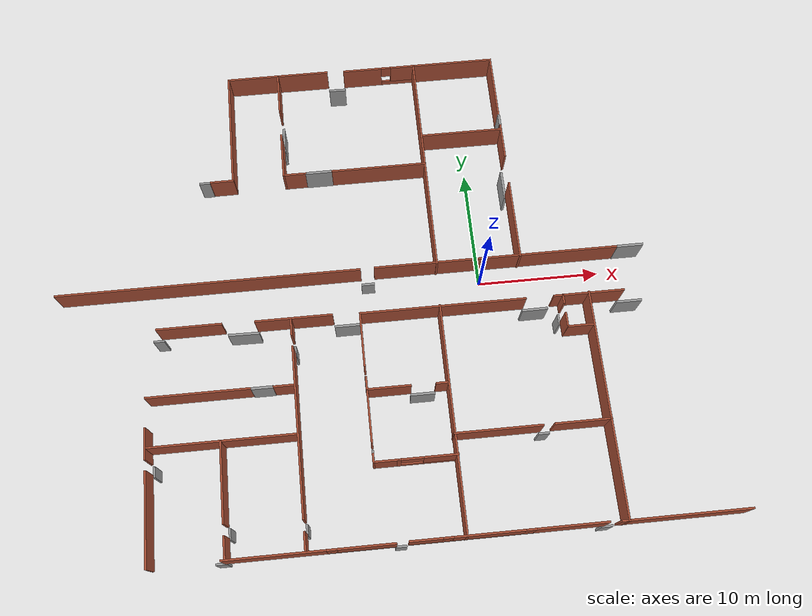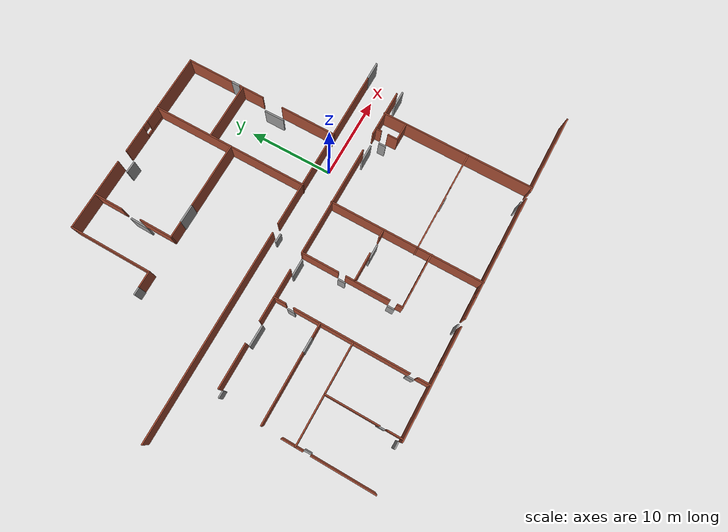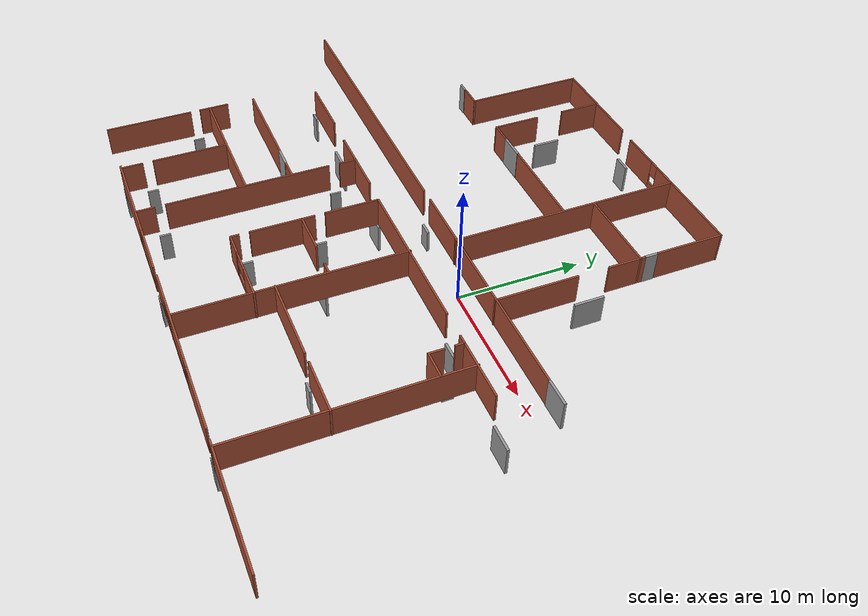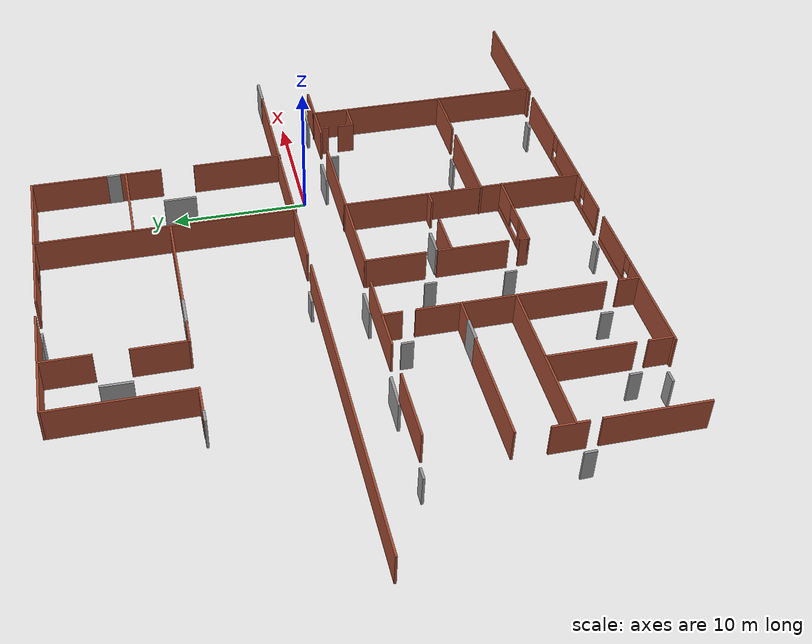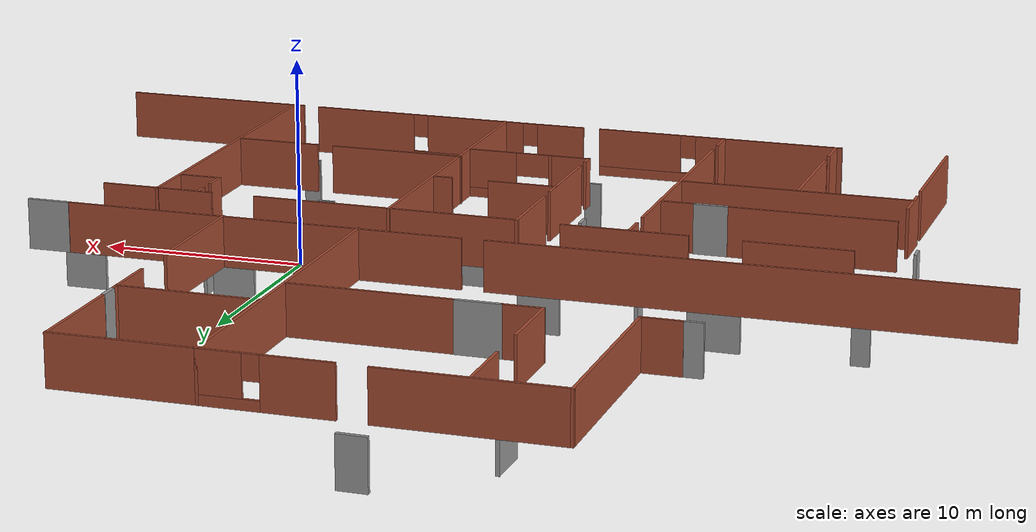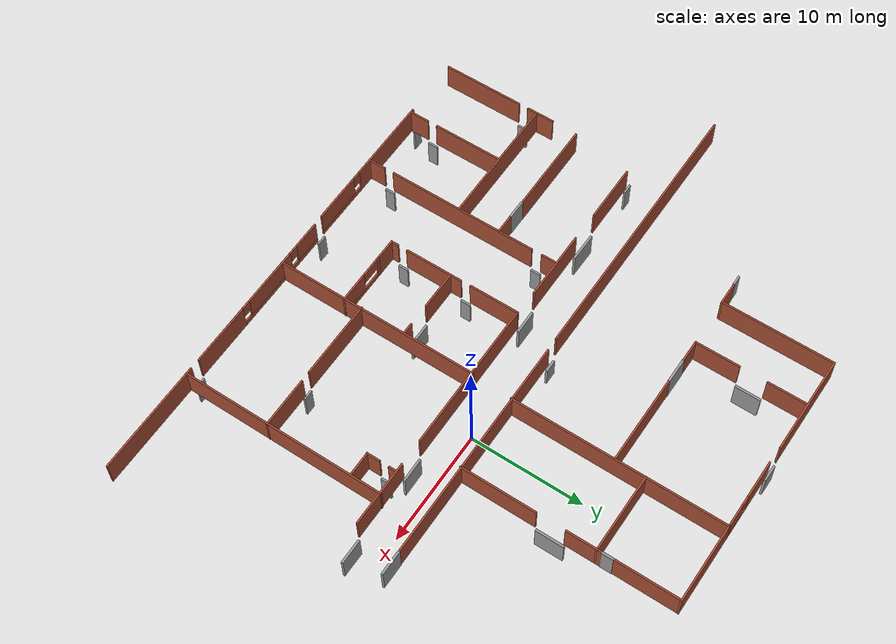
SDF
<sdf version="1.6">
 <model name="Bainer_Hall_FP">
  <pose>1.25513 -0.156837 0 0 -0 0</pose>
  <link name="Door_11">
   <collision name="Door_11_Collision">
    <geometry><box><size>0.9 0.17 2.5</size></box></geometry>
    <pose>0 0 1.25 0 -0 0</pose>
   </collision>
   <visual name="Door_11_Visual">
    <pose>0 0 1.25 0 -0 0</pose>
    <geometry><box><size>0.9 0.17 2.5</size></box></geometry>
    <material>
     <script><uri>file://media/materials/scripts/gazebo.material</uri><name>Gazebo/Grey</name></script>
    </material>
   </visual>
   <pose>-23.3342 10.4772 0 0 -0 0</pose>
  </link>
  <link name="Door_14">
   <collision name="Door_14_Collision">
    <geometry><box><size>1.11106 0.2 2</size></box></geometry>
    <pose>0 0 1 0 -0 0</pose>
   </collision>
   <visual name="Door_14_Visual">
    <pose>0 0 1 0 -0 0</pose>
    <geometry><box><size>1.11106 0.2 2</size></box></geometry>
    <material>
     <script><uri>file://media/materials/scripts/gazebo.material</uri><name>Gazebo/Grey</name></script>
    </material>
   </visual>
   <pose>-10.4248 1.46984 -3 0 -0 0</pose>
  </link>
  <link name="Door_15">
   <collision name="Door_15_Collision">
    <geometry><box><size>2.143 0.2 2.5</size></box></geometry>
    <pose>0 0 1.25 0 -0 0</pose>
   </collision>
   <visual name="Door_15_Visual">
    <pose>0 0 1.25 0 -0 0</pose>
    <geometry><box><size>2.143 0.2 2.5</size></box></geometry>
    <material>
     <script><uri>file://media/materials/scripts/gazebo.material</uri><name>Gazebo/Grey</name></script>
    </material>
   </visual>
   <pose>11.2185 1.52839 0 0 -0 0</pose>
  </link>
  <link name="Door_16">
   <collision name="Door_16_Collision">
    <geometry><box><size>1.464 0.2 2.5</size></box></geometry>
    <pose>0 0 1.25 0 -0 0</pose>
   </collision>
   <visual name="Door_16_Visual">
    <pose>0 0 1.25 0 -0 0</pose>
    <geometry><box><size>1.464 0.2 2.5</size></box></geometry>
    <material>
     <script><uri>file://media/materials/scripts/gazebo.material</uri><name>Gazebo/Grey</name></script>
    </material>
   </visual>
   <pose>-11.5568 20.3759 -3 0 -0 3.12319</pose>
  </link>
  <link name="Door_17">
   <collision name="Door_17_Collision">
    <geometry><box><size>2.225 0.2 2.5</size></box></geometry>
    <pose>0 0 1.25 0 -0 0</pose>
   </collision>
   <visual name="Door_17_Visual">
    <pose>0 0 1.25 0 -0 0</pose>
    <geometry><box><size>2.225 0.2 2.5</size></box></geometry>
    <material>
     <script><uri>file://media/materials/scripts/gazebo.material</uri><name>Gazebo/Grey</name></script>
    </material>
   </visual>
   <pose>-13.7307 10.6137 0 0 -0 0</pose>
  </link>
  <link name="Door_19">
   <collision name="Door_19_Collision">
    <geometry><box><size>2.29098 0.2 2.5</size></box></geometry>
    <pose>0 0 1.25 0 -0 0</pose>
   </collision>
   <visual name="Door_19_Visual">
    <pose>0 0 1.25 0 -0 0</pose>
    <geometry><box><size>2.29098 0.2 2.5</size></box></geometry>
    <material>
     <script><uri>file://media/materials/scripts/gazebo.material</uri><name>Gazebo/Grey</name></script>
    </material>
   </visual>
   <pose>-16.6651 15.6807 -3 0 0 -1.58178</pose>
  </link>
  <link name="Door_20">
   <collision name="Door_20_Collision">
    <geometry><box><size>2.518 0.2 2.5</size></box></geometry>
    <pose>0 0 1.25 0 -0 0</pose>
   </collision>
   <visual name="Door_20_Visual">
    <pose>0 0 1.25 0 -0 0</pose>
    <geometry><box><size>2.518 0.2 2.5</size></box></geometry>
    <material>
     <script><uri>file://media/materials/scripts/gazebo.material</uri><name>Gazebo/Grey</name></script>
    </material>
   </visual>
   <pose>2.14668 9.40743 -3 0 -0 1.57339</pose>
  </link>
  <link name="Door_21">
   <collision name="Door_21_Collision">
    <geometry><box><size>1.007 0.2 2.5</size></box></geometry>
    <pose>0 0 1.25 0 -0 0</pose>
   </collision>
   <visual name="Door_21_Visual">
    <pose>0 0 1.25 0 -0 0</pose>
    <geometry><box><size>1.007 0.2 2.5</size></box></geometry>
    <material>
     <script><uri>file://media/materials/scripts/gazebo.material</uri><name>Gazebo/Grey</name></script>
    </material>
   </visual>
   <pose>2.14334 14.2049 0 0 0 -1.5708</pose>
  </link>
  <link name="Door_32">
   <collision name="Door_32_Collision">
    <geometry><box><size>0.9 0.17 2.5</size></box></geometry>
    <pose>0 0 1.25 0 -0 0</pose>
   </collision>
   <visual name="Door_32_Visual">
    <pose>0 0 1.25 0 -0 0</pose>
    <geometry><box><size>0.9 0.17 2.5</size></box></geometry>
    <material>
     <script><uri>file://media/materials/scripts/gazebo.material</uri><name>Gazebo/Grey</name></script>
    </material>
   </visual>
   <pose>-28.0011 -2.09981 -3 0 -0 0</pose>
  </link>
  <link name="Door_33">
   <collision name="Door_33_Collision">
    <geometry><box><size>2.592 0.2 2.5</size></box></geometry>
    <pose>0 0 1.25 0 -0 0</pose>
   </collision>
   <visual name="Door_33_Visual">
    <pose>0 0 1.25 0 -0 0</pose>
    <geometry><box><size>2.592 0.2 2.5</size></box></geometry>
    <material>
     <script><uri>file://media/materials/scripts/gazebo.material</uri><name>Gazebo/Grey</name></script>
    </material>
   </visual>
   <pose>-21.0189 -2.12561 -3 0 -0 3.12756</pose>
  </link>
  <link name="Door_34">
   <collision name="Door_34_Collision">
    <geometry><box><size>2.11 0.2 2.5</size></box></geometry>
    <pose>0 0 1.25 0 -0 0</pose>
   </collision>
   <visual name="Door_34_Visual">
    <pose>0 0 1.25 0 -0 0</pose>
    <geometry><box><size>2.11 0.2 2.5</size></box></geometry>
    <material>
     <script><uri>file://media/materials/scripts/gazebo.material</uri><name>Gazebo/Grey</name></script>
    </material>
   </visual>
   <pose>-12.4392 -2.19282 -3 0 0 -3.14115</pose>
  </link>
  <link name="Door_35">
   <collision name="Door_35_Collision">
    <geometry><box><size>2.157 0.2 2.5</size></box></geometry>
    <pose>0 0 1.25 0 -0 0</pose>
   </collision>
   <visual name="Door_35_Visual">
    <pose>0 0 1.25 0 -0 0</pose>
    <geometry><box><size>2.157 0.2 2.5</size></box></geometry>
    <material>
     <script><uri>file://media/materials/scripts/gazebo.material</uri><name>Gazebo/Grey</name></script>
    </material>
   </visual>
   <pose>3.22764 -2.26006 -3 0 0 -3.13357</pose>
  </link>
  <link name="Door_36">
   <collision name="Door_36_Collision">
    <geometry><box><size>2.157 0.2 2.5</size></box></geometry>
    <pose>0 0 1.25 0 -0 0</pose>
   </collision>
   <visual name="Door_36_Visual">
    <pose>0 0 1.25 0 -0 0</pose>
    <geometry><box><size>2.157 0.2 2.5</size></box></geometry>
    <material>
     <script><uri>file://media/materials/scripts/gazebo.material</uri><name>Gazebo/Grey</name></script>
    </material>
   </visual>
   <pose>11.1742 -2.26006 -3 0 -0 0</pose>
  </link>
  <link name="Door_47">
   <collision name="Door_47_Collision">
    <geometry><box><size>0.9 0.17 2.5</size></box></geometry>
    <pose>0 0 1.25 0 -0 0</pose>
   </collision>
   <visual name="Door_47_Visual">
    <pose>0 0 1.25 0 -0 0</pose>
    <geometry><box><size>0.9 0.17 2.5</size></box></geometry>
    <material>
     <script><uri>file://media/materials/scripts/gazebo.material</uri><name>Gazebo/Grey</name></script>
    </material>
   </visual>
   <pose>6.17549 -20.287 -3 0 -0 0</pose>
  </link>
  <link name="Door_48">
   <collision name="Door_48_Collision">
    <geometry><box><size>0.9 0.17 2.5</size></box></geometry>
    <pose>0 0 1.25 0 -0 0</pose>
   </collision>
   <visual name="Door_48_Visual">
    <pose>0 0 1.25 0 -0 0</pose>
    <geometry><box><size>0.9 0.17 2.5</size></box></geometry>
    <material>
     <script><uri>file://media/materials/scripts/gazebo.material</uri><name>Gazebo/Grey</name></script>
    </material>
   </visual>
   <pose>-9.75215 -20.292 -3 0 -0 0</pose>
  </link>
  <link name="Door_60">
   <collision name="Door_60_Collision">
    <geometry><box><size>0.9 0.17 2.5</size></box></geometry>
    <pose>0 0 1.25 0 -0 0</pose>
   </collision>
   <visual name="Door_60_Visual">
    <pose>0 0 1.25 0 -0 0</pose>
    <geometry><box><size>0.9 0.17 2.5</size></box></geometry>
    <material>
     <script><uri>file://media/materials/scripts/gazebo.material</uri><name>Gazebo/Grey</name></script>
    </material>
   </visual>
   <pose>-28.5031 -12.8222 -3 0 -0 1.59264</pose>
  </link>
  <link name="Door_61">
   <collision name="Door_61_Collision">
    <geometry><box><size>0.9 0.17 2.5</size></box></geometry>
    <pose>0 0 1.25 0 -0 0</pose>
   </collision>
   <visual name="Door_61_Visual">
    <pose>0 0 1.25 0 -0 0</pose>
    <geometry><box><size>0.9 0.17 2.5</size></box></geometry>
    <material>
     <script><uri>file://media/materials/scripts/gazebo.material</uri><name>Gazebo/Grey</name></script>
    </material>
   </visual>
   <pose>-16.8508 -4.01792 -3 0 -0 1.57286</pose>
  </link>
  <link name="Door_62">
   <collision name="Door_62_Collision">
    <geometry><box><size>0.9 0.17 2.5</size></box></geometry>
    <pose>0 0 1.25 0 -0 0</pose>
   </collision>
   <visual name="Door_62_Visual">
    <pose>0 0 1.25 0 -0 0</pose>
    <geometry><box><size>0.9 0.17 2.5</size></box></geometry>
    <material>
     <script><uri>file://media/materials/scripts/gazebo.material</uri><name>Gazebo/Grey</name></script>
    </material>
   </visual>
   <pose>-16.8428 -18.4047 -3 0 -0 1.55866</pose>
  </link>
  <link name="Door_63">
   <collision name="Door_63_Collision">
    <geometry><box><size>1.71 0.2 2.5</size></box></geometry>
    <pose>0 0 1.25 0 -0 0</pose>
   </collision>
   <visual name="Door_63_Visual">
    <pose>0 0 1.25 0 -0 0</pose>
    <geometry><box><size>1.71 0.2 2.5</size></box></geometry>
    <material>
     <script><uri>file://media/materials/scripts/gazebo.material</uri><name>Gazebo/Grey</name></script>
    </material>
   </visual>
   <pose>-19.4005 -7.62221 0 0 -0 3.14079</pose>
  </link>
  <link name="Door_64">
   <collision name="Door_64_Collision">
    <geometry><box><size>0.9 0.17 2.5</size></box></geometry>
    <pose>0 0 1.25 0 -0 0</pose>
   </collision>
   <visual name="Door_64_Visual">
    <pose>0 0 1.25 0 -0 0</pose>
    <geometry><box><size>0.9 0.17 2.5</size></box></geometry>
    <material>
     <script><uri>file://media/materials/scripts/gazebo.material</uri><name>Gazebo/Grey</name></script>
    </material>
   </visual>
   <pose>-22.7643 -18.1446 -3 0 0 -1.56371</pose>
  </link>
  <link name="Door_66">
   <collision name="Door_66_Collision">
    <geometry><box><size>0.9 0.17 2.5</size></box></geometry>
    <pose>0 0 1.25 0 -0 0</pose>
   </collision>
   <visual name="Door_66_Visual">
    <pose>0 0 1.25 0 -0 0</pose>
    <geometry><box><size>0.9 0.17 2.5</size></box></geometry>
    <material>
     <script><uri>file://media/materials/scripts/gazebo.material</uri><name>Gazebo/Grey</name></script>
    </material>
   </visual>
   <pose>-23.4877 -20.2913 -3 0 -0 0</pose>
  </link>
  <link name="Door_67">
   <collision name="Door_67_Collision">
    <geometry><box><size>0.9 0.17 2.5</size></box></geometry>
    <pose>0 0 1.25 0 -0 0</pose>
   </collision>
   <visual name="Door_67_Visual">
    <pose>0 0 1.25 0 -0 0</pose>
    <geometry><box><size>0.9 0.17 2.5</size></box></geometry>
    <material>
     <script><uri>file://media/materials/scripts/gazebo.material</uri><name>Gazebo/Grey</name></script>
    </material>
   </visual>
   <pose>-11.3225 -7.13282 -3 0 0 -1.57029</pose>
  </link>
  <link name="Door_68">
   <collision name="Door_68_Collision">
    <geometry><box><size>0.9 0.17 2.5</size></box></geometry>
    <pose>0 0 1.25 0 -0 0</pose>
   </collision>
   <visual name="Door_68_Visual">
    <pose>0 0 1.25 0 -0 0</pose>
    <geometry><box><size>0.9 0.17 2.5</size></box></geometry>
    <material>
     <script><uri>file://media/materials/scripts/gazebo.material</uri><name>Gazebo/Grey</name></script>
    </material>
   </visual>
   <pose>-11.287 -13.1738 -3 0 0 -1.56906</pose>
  </link>
  <link name="Door_70">
   <collision name="Door_70_Collision">
    <geometry><box><size>2 0.2 2.5</size></box></geometry>
    <pose>0 0 1.25 0 -0 0</pose>
   </collision>
   <visual name="Door_70_Visual">
    <pose>0 0 1.25 0 -0 0</pose>
    <geometry><box><size>2 0.2 2.5</size></box></geometry>
    <material>
     <script><uri>file://media/materials/scripts/gazebo.material</uri><name>Gazebo/Grey</name></script>
    </material>
   </visual>
   <pose>-6.84024 -8.55412 -3 0 -0 0</pose>
  </link>
  <link name="Door_72">
   <collision name="Door_72_Collision">
    <geometry><box><size>0.9 0.17 2.5</size></box></geometry>
    <pose>0 0 1.25 0 -0 0</pose>
   </collision>
   <visual name="Door_72_Visual">
    <pose>0 0 1.25 0 -0 0</pose>
    <geometry><box><size>0.9 0.17 2.5</size></box></geometry>
    <material>
     <script><uri>file://media/materials/scripts/gazebo.material</uri><name>Gazebo/Grey</name></script>
    </material>
   </visual>
   <pose>2.42458 -12.6709 -3 0 -0 0</pose>
  </link>
  <link name="Door_73">
   <collision name="Door_73_Collision">
    <geometry><box><size>0.9 0.17 2.5</size></box></geometry>
    <pose>0 0 1.25 0 -0 0</pose>
   </collision>
   <visual name="Door_73_Visual">
    <pose>0 0 1.25 0 -0 0</pose>
    <geometry><box><size>0.9 0.17 2.5</size></box></geometry>
    <material>
     <script><uri>file://media/materials/scripts/gazebo.material</uri><name>Gazebo/Grey</name></script>
    </material>
   </visual>
   <pose>5.06769 -3.35498 -3 0 0 -1.56706</pose>
  </link>
  <link name="Wall_167">
   <collision name="Wall_167_Collision">
    <geometry><box><size>10 0.15 2.5</size></box></geometry>
    <pose>0 0 1.25 0 -0 0</pose>
   </collision>
   <visual name="Wall_167_Visual">
    <pose>0 0 1.25 0 -0 0</pose>
    <geometry><box><size>10 0.15 2.5</size></box></geometry>
    <material>
     <script><uri>file://media/materials/scripts/gazebo.material</uri><name>Gazebo/Bricks</name></script>
     <ambient>1 1 1 1</ambient>
    </material>
   </visual>
   <pose>-20.969 15.4363 0 0 0 -1.5708</pose>
  </link>
  <link name="Wall_169">
   <collision name="Wall_169_Collision">
    <geometry><box><size>2 0.15 2.5</size></box></geometry>
    <pose>0 0 1.25 0 -0 0</pose>
   </collision>
   <visual name="Wall_169_Visual">
    <pose>0 0 1.25 0 -0 0</pose>
    <geometry><box><size>2 0.15 2.5</size></box></geometry>
    <material>
     <script><uri>file://media/materials/scripts/gazebo.material</uri><name>Gazebo/Bricks</name></script>
     <ambient>1 1 1 1</ambient>
    </material>
   </visual>
   <pose>-21.894 10.5113 0 0 -0 3.14159</pose>
  </link>
  <link name="Wall_171">
   <collision name="Wall_171_Collision">
    <geometry><box><size>24.75 0.15 2.5</size></box></geometry>
    <pose>0 0 1.25 0 -0 0</pose>
   </collision>
   <visual name="Wall_171_Visual">
    <pose>0 0 1.25 0 -0 0</pose>
    <geometry><box><size>24.75 0.15 2.5</size></box></geometry>
    <material>
     <script><uri>file://media/materials/scripts/gazebo.material</uri><name>Gazebo/Bricks</name></script>
     <ambient>1 1 1 1</ambient>
    </material>
   </visual>
   <pose>-23.3231 1.50384 0 0 -0 0</pose>
  </link>
  <link name="Wall_173">
   <collision name="Wall_173_Collision">
    <geometry><box><size>20 0.15 2.5</size></box></geometry>
    <pose>0 0 1.25 0 -0 0</pose>
   </collision>
   <visual name="Wall_173_Visual">
    <pose>0 0 1.25 0 -0 0</pose>
    <geometry><box><size>20 0.15 2.5</size></box></geometry>
    <material>
     <script><uri>file://media/materials/scripts/gazebo.material</uri><name>Gazebo/Bricks</name></script>
     <ambient>1 1 1 1</ambient>
    </material>
   </visual>
   <pose>0.142914 1.53154 0 0 -0 0</pose>
  </link>
  <link name="Wall_177">
   <collision name="Wall_177_Collision">
    <geometry><box><size>8.75 0.15 2.5</size></box></geometry>
    <pose>0 0 1.25 0 -0 0</pose>
   </collision>
   <visual name="Wall_177_Visual">
    <pose>0 0 1.25 0 -0 0</pose>
    <geometry><box><size>8.75 0.15 2.5</size></box></geometry>
    <material>
     <script><uri>file://media/materials/scripts/gazebo.material</uri><name>Gazebo/Bricks</name></script>
     <ambient>1 1 1 1</ambient>
    </material>
   </visual>
   <pose>-16.669 20.3613 0 0 -0 0</pose>
  </link>
  <link name="Wall_179">
   <pose>-7.75834 20.3043 0 0 -0 0</pose>
   <visual name="Wall_179_Visual_0">
    <pose>-1.45002 0 1.25 0 -0 0</pose>
    <geometry><box><size>3.34997 0.15 2.5</size></box></geometry>
    <material>
     <script><uri>file://media/materials/scripts/gazebo.material</uri><name>Gazebo/Bricks</name></script>
     <ambient>1 1 1 1</ambient>
    </material>
   </visual>
   <collision name="Wall_179_Collision_0">
    <geometry><box><size>3.34997 0.15 2.5</size></box></geometry>
    <pose>-1.45002 0 1.25 0 -0 0</pose>
   </collision>
   <visual name="Wall_179_Visual_1">
    <pose>1.67498 0 0.25 0 -0 0</pose>
    <geometry><box><size>2.90003 0.15 0.5</size></box></geometry>
    <material>
     <script><uri>file://media/materials/scripts/gazebo.material</uri><name>Gazebo/Bricks</name></script>
     <ambient>1 1 1 1</ambient>
    </material>
   </visual>
   <collision name="Wall_179_Collision_1">
    <geometry><box><size>2.90003 0.15 0.5</size></box></geometry>
    <pose>1.67498 0 0.25 0 -0 0</pose>
   </collision>
   <visual name="Wall_179_Visual_2">
    <pose>2.07498 0 1.5 0 -0 0</pose>
    <geometry><box><size>2.10003 0.15 2</size></box></geometry>
    <material>
     <script><uri>file://media/materials/scripts/gazebo.material</uri><name>Gazebo/Bricks</name></script>
     <ambient>1 1 1 1</ambient>
    </material>
   </visual>
   <collision name="Wall_179_Collision_2">
    <geometry><box><size>2.10003 0.15 2</size></box></geometry>
    <pose>2.07498 0 1.5 0 -0 0</pose>
   </collision>
   <visual name="Wall_179_Visual_3">
    <pose>0.62497 0 1.9 0 -0 0</pose>
    <geometry><box><size>0.8 0.15 1.2</size></box></geometry>
    <material>
     <script><uri>file://media/materials/scripts/gazebo.material</uri><name>Gazebo/Bricks</name></script>
     <ambient>1 1 1 1</ambient>
    </material>
   </visual>
   <collision name="Wall_179_Collision_3">
    <geometry><box><size>0.8 0.15 1.2</size></box></geometry>
    <pose>0.62497 0 1.9 0 -0 0</pose>
   </collision>
  </link>
  <link name="Wall_180">
   <collision name="Wall_180_Collision">
    <geometry><box><size>19 0.15 2.5</size></box></geometry>
    <pose>0 0 1.25 0 -0 0</pose>
   </collision>
   <visual name="Wall_180_Visual">
    <pose>0 0 1.25 0 -0 0</pose>
    <geometry><box><size>19 0.15 2.5</size></box></geometry>
    <material>
     <script><uri>file://media/materials/scripts/gazebo.material</uri><name>Gazebo/Bricks</name></script>
     <ambient>1 1 1 1</ambient>
    </material>
   </visual>
   <pose>-4.70834 10.8793 0 0 0 -1.5708</pose>
  </link>
  <link name="Wall_182">
   <collision name="Wall_182_Collision">
    <geometry><box><size>8 0.15 2.5</size></box></geometry>
    <pose>0 0 1.25 0 -0 0</pose>
   </collision>
   <visual name="Wall_182_Visual">
    <pose>0 0 1.25 0 -0 0</pose>
    <geometry><box><size>8 0.15 2.5</size></box></geometry>
    <material>
     <script><uri>file://media/materials/scripts/gazebo.material</uri><name>Gazebo/Bricks</name></script>
     <ambient>1 1 1 1</ambient>
    </material>
   </visual>
   <pose>-8.64818 10.6137 0 0 -0 3.14159</pose>
  </link>
  <link name="Wall_184">
   <collision name="Wall_184_Collision">
    <geometry><box><size>2 0.15 2.5</size></box></geometry>
    <pose>0 0 1.25 0 -0 0</pose>
   </collision>
   <visual name="Wall_184_Visual">
    <pose>0 0 1.25 0 -0 0</pose>
    <geometry><box><size>2 0.15 2.5</size></box></geometry>
    <material>
     <script><uri>file://media/materials/scripts/gazebo.material</uri><name>Gazebo/Bricks</name></script>
     <ambient>1 1 1 1</ambient>
    </material>
   </visual>
   <pose>-15.7602 10.6137 0 0 -0 3.14159</pose>
  </link>
  <link name="Wall_185">
   <collision name="Wall_185_Collision">
    <geometry><box><size>4 0.15 2.5</size></box></geometry>
    <pose>0 0 1.25 0 -0 0</pose>
   </collision>
   <visual name="Wall_185_Visual">
    <pose>0 0 1.25 0 -0 0</pose>
    <geometry><box><size>4 0.15 2.5</size></box></geometry>
    <material>
     <script><uri>file://media/materials/scripts/gazebo.material</uri><name>Gazebo/Bricks</name></script>
     <ambient>1 1 1 1</ambient>
    </material>
   </visual>
   <pose>-16.6852 12.5387 0 0 -0 1.5708</pose>
  </link>
  <link name="Wall_188">
   <collision name="Wall_188_Collision">
    <geometry><box><size>3.5 0.15 2.5</size></box></geometry>
    <pose>0 0 1.25 0 -0 0</pose>
   </collision>
   <visual name="Wall_188_Visual">
    <pose>0 0 1.25 0 -0 0</pose>
    <geometry><box><size>3.5 0.15 2.5</size></box></geometry>
    <material>
     <script><uri>file://media/materials/scripts/gazebo.material</uri><name>Gazebo/Bricks</name></script>
     <ambient>1 1 1 1</ambient>
    </material>
   </visual>
   <pose>-16.6704 18.6168 0 0 -0 1.5708</pose>
  </link>
  <link name="Wall_190">
   <collision name="Wall_190_Collision">
    <geometry><box><size>6.75 0.15 2.5</size></box></geometry>
    <pose>0 0 1.25 0 -0 0</pose>
   </collision>
   <visual name="Wall_190_Visual">
    <pose>0 0 1.25 0 -0 0</pose>
    <geometry><box><size>6.75 0.15 2.5</size></box></geometry>
    <material>
     <script><uri>file://media/materials/scripts/gazebo.material</uri><name>Gazebo/Bricks</name></script>
     <ambient>1 1 1 1</ambient>
    </material>
   </visual>
   <pose>2.13857 4.7653 0 0 -0 1.5708</pose>
  </link>
  <link name="Wall_192">
   <collision name="Wall_192_Collision">
    <geometry><box><size>2.75 0.15 2.5</size></box></geometry>
    <pose>0 0 1.25 0 -0 0</pose>
   </collision>
   <visual name="Wall_192_Visual">
    <pose>0 0 1.25 0 -0 0</pose>
    <geometry><box><size>2.75 0.15 2.5</size></box></geometry>
    <material>
     <script><uri>file://media/materials/scripts/gazebo.material</uri><name>Gazebo/Bricks</name></script>
     <ambient>1 1 1 1</ambient>
    </material>
   </visual>
   <pose>2.1524 11.9829 0 0 -0 1.5708</pose>
  </link>
  <link name="Wall_195">
   <collision name="Wall_195_Collision">
    <geometry><box><size>0.5 0.15 2.5</size></box></geometry>
    <pose>0 0 1.25 0 -0 0</pose>
   </collision>
   <visual name="Wall_195_Visual">
    <pose>0 0 1.25 0 -0 0</pose>
    <geometry><box><size>0.5 0.15 2.5</size></box></geometry>
    <material>
     <script><uri>file://media/materials/scripts/gazebo.material</uri><name>Gazebo/Bricks</name></script>
     <ambient>1 1 1 1</ambient>
    </material>
   </visual>
   <pose>2.1524 13.458 0 0 -0 1.5708</pose>
  </link>
  <link name="Wall_197">
   <collision name="Wall_197_Collision">
    <geometry><box><size>7 0.15 2.5</size></box></geometry>
    <pose>0 0 1.25 0 -0 0</pose>
   </collision>
   <visual name="Wall_197_Visual">
    <pose>0 0 1.25 0 -0 0</pose>
    <geometry><box><size>7 0.15 2.5</size></box></geometry>
    <material>
     <script><uri>file://media/materials/scripts/gazebo.material</uri><name>Gazebo/Bricks</name></script>
     <ambient>1 1 1 1</ambient>
    </material>
   </visual>
   <pose>-1.2726 13.2829 0 0 -0 3.14159</pose>
  </link>
  <link name="Wall_199">
   <collision name="Wall_199_Collision">
    <geometry><box><size>5.54 0.15 2.5</size></box></geometry>
    <pose>0 0 1.25 0 -0 0</pose>
   </collision>
   <visual name="Wall_199_Visual">
    <pose>0 0 1.25 0 -0 0</pose>
    <geometry><box><size>5.54 0.15 2.5</size></box></geometry>
    <material>
     <script><uri>file://media/materials/scripts/gazebo.material</uri><name>Gazebo/Bricks</name></script>
     <ambient>1 1 1 1</ambient>
    </material>
   </visual>
   <pose>2.12987 17.4578 0 0 -0 1.5708</pose>
  </link>
  <link name="Wall_201">
   <collision name="Wall_201_Collision">
    <geometry><box><size>7 0.15 2.5</size></box></geometry>
    <pose>0 0 1.25 0 -0 0</pose>
   </collision>
   <visual name="Wall_201_Visual">
    <pose>0 0 1.25 0 -0 0</pose>
    <geometry><box><size>7 0.15 2.5</size></box></geometry>
    <material>
     <script><uri>file://media/materials/scripts/gazebo.material</uri><name>Gazebo/Bricks</name></script>
     <ambient>1 1 1 1</ambient>
    </material>
   </visual>
   <pose>-1.28334 20.3043 0 0 -0 0</pose>
  </link>
  <link name="Wall_268">
   <collision name="Wall_268_Collision">
    <geometry><box><size>5.25 0.15 2.5</size></box></geometry>
    <pose>0 0 1.25 0 -0 0</pose>
   </collision>
   <visual name="Wall_268_Visual">
    <pose>0 0 1.25 0 -0 0</pose>
    <geometry><box><size>5.25 0.15 2.5</size></box></geometry>
    <material>
     <script><uri>file://media/materials/scripts/gazebo.material</uri><name>Gazebo/Bricks</name></script>
     <ambient>1 1 1 1</ambient>
    </material>
   </visual>
   <pose>-24.9572 -2.09981 0 0 -0 0</pose>
  </link>
  <link name="Wall_270">
   <collision name="Wall_270_Collision">
    <geometry><box><size>6.25 0.15 2.5</size></box></geometry>
    <pose>0 0 1.25 0 -0 0</pose>
   </collision>
   <visual name="Wall_270_Visual">
    <pose>0 0 1.25 0 -0 0</pose>
    <geometry><box><size>6.25 0.15 2.5</size></box></geometry>
    <material>
     <script><uri>file://media/materials/scripts/gazebo.material</uri><name>Gazebo/Bricks</name></script>
     <ambient>1 1 1 1</ambient>
    </material>
   </visual>
   <pose>-16.6181 -2.1553 0 0 -0 0</pose>
  </link>
  <link name="Wall_272">
   <collision name="Wall_272_Collision">
    <geometry><box><size>13.5 0.15 2.5</size></box></geometry>
    <pose>0 0 1.25 0 -0 0</pose>
   </collision>
   <visual name="Wall_272_Visual">
    <pose>0 0 1.25 0 -0 0</pose>
    <geometry><box><size>13.5 0.15 2.5</size></box></geometry>
    <material>
     <script><uri>file://media/materials/scripts/gazebo.material</uri><name>Gazebo/Bricks</name></script>
     <ambient>1 1 1 1</ambient>
    </material>
   </visual>
   <pose>-4.64361 -2.26006 0 0 -0 0</pose>
  </link>
  <link name="Wall_274">
   <collision name="Wall_274_Collision">
    <geometry><box><size>5.75 0.15 2.5</size></box></geometry>
    <pose>0 0 1.25 0 -0 0</pose>
   </collision>
   <visual name="Wall_274_Visual">
    <pose>0 0 1.25 0 -0 0</pose>
    <geometry><box><size>5.75 0.15 2.5</size></box></geometry>
    <material>
     <script><uri>file://media/materials/scripts/gazebo.material</uri><name>Gazebo/Bricks</name></script>
     <ambient>1 1 1 1</ambient>
    </material>
   </visual>
   <pose>7.19493 -2.26006 0 0 -0 0</pose>
  </link>
  <link name="Wall_312">
   <collision name="Wall_312_Collision">
    <geometry><box><size>10 0.15 2.5</size></box></geometry>
    <pose>0 0 1.25 0 -0 0</pose>
   </collision>
   <visual name="Wall_312_Visual">
    <pose>0 0 1.25 0 -0 0</pose>
    <geometry><box><size>10 0.15 2.5</size></box></geometry>
    <material>
     <script><uri>file://media/materials/scripts/gazebo.material</uri><name>Gazebo/Bricks</name></script>
     <ambient>1 1 1 1</ambient>
    </material>
   </visual>
   <pose>11.6137 -20.287 0 0 -0 3.14159</pose>
  </link>
  <link name="Wall_314">
   <pose>-1.71998 -20.26 0 0 -0 3.14159</pose>
   <visual name="Wall_314_Visual_0">
    <pose>-4.7487 0 1.25 0 -0 0</pose>
    <geometry><box><size>5.50261 0.15 2.5</size></box></geometry>
    <material>
     <script><uri>file://media/materials/scripts/gazebo.material</uri><name>Gazebo/Bricks</name></script>
     <ambient>1 1 1 1</ambient>
    </material>
   </visual>
   <collision name="Wall_314_Collision_0">
    <geometry><box><size>5.50261 0.15 2.5</size></box></geometry>
    <pose>-4.7487 0 1.25 0 -0 0</pose>
   </collision>
   <visual name="Wall_314_Visual_1">
    <pose>2.7513 0 0.25 0 -0 0</pose>
    <geometry><box><size>9.49739 0.15 0.5</size></box></geometry>
    <material>
     <script><uri>file://media/materials/scripts/gazebo.material</uri><name>Gazebo/Bricks</name></script>
     <ambient>1 1 1 1</ambient>
    </material>
   </visual>
   <collision name="Wall_314_Collision_1">
    <geometry><box><size>9.49739 0.15 0.5</size></box></geometry>
    <pose>2.7513 0 0.25 0 -0 0</pose>
   </collision>
   <visual name="Wall_314_Visual_2">
    <pose>1.47805 0 1.5 0 -0 0</pose>
    <geometry><box><size>5.35089 0.15 2</size></box></geometry>
    <material>
     <script><uri>file://media/materials/scripts/gazebo.material</uri><name>Gazebo/Bricks</name></script>
     <ambient>1 1 1 1</ambient>
    </material>
   </visual>
   <collision name="Wall_314_Collision_2">
    <geometry><box><size>5.35089 0.15 2</size></box></geometry>
    <pose>1.47805 0 1.5 0 -0 0</pose>
   </collision>
   <visual name="Wall_314_Visual_3">
    <pose>6.22675 0 1.5 0 -0 0</pose>
    <geometry><box><size>2.5465 0.15 2</size></box></geometry>
    <material>
     <script><uri>file://media/materials/scripts/gazebo.material</uri><name>Gazebo/Bricks</name></script>
     <ambient>1 1 1 1</ambient>
    </material>
   </visual>
   <collision name="Wall_314_Collision_3">
    <geometry><box><size>2.5465 0.15 2</size></box></geometry>
    <pose>6.22675 0 1.5 0 -0 0</pose>
   </collision>
   <visual name="Wall_314_Visual_4">
    <pose>-1.59739 0 1.9 0 -0 0</pose>
    <geometry><box><size>0.8 0.15 1.2</size></box></geometry>
    <material>
     <script><uri>file://media/materials/scripts/gazebo.material</uri><name>Gazebo/Bricks</name></script>
     <ambient>1 1 1 1</ambient>
    </material>
   </visual>
   <collision name="Wall_314_Collision_4">
    <geometry><box><size>0.8 0.15 1.2</size></box></geometry>
    <pose>-1.59739 0 1.9 0 -0 0</pose>
   </collision>
   <visual name="Wall_314_Visual_5">
    <pose>4.5535 0 1.9 0 -0 0</pose>
    <geometry><box><size>0.8 0.15 1.2</size></box></geometry>
    <material>
     <script><uri>file://media/materials/scripts/gazebo.material</uri><name>Gazebo/Bricks</name></script>
     <ambient>1 1 1 1</ambient>
    </material>
   </visual>
   <collision name="Wall_314_Collision_5">
    <geometry><box><size>0.8 0.15 1.2</size></box></geometry>
    <pose>4.5535 0 1.9 0 -0 0</pose>
   </collision>
  </link>
  <link name="Wall_355">
   <collision name="Wall_355_Collision">
    <geometry><box><size>2.5 0.15 2.5</size></box></geometry>
    <pose>0 0 1.25 0 -0 0</pose>
   </collision>
   <visual name="Wall_355_Visual">
    <pose>0 0 1.25 0 -0 0</pose>
    <geometry><box><size>2.5 0.15 2.5</size></box></geometry>
    <material>
     <script><uri>file://media/materials/scripts/gazebo.material</uri><name>Gazebo/Bricks</name></script>
     <ambient>1 1 1 1</ambient>
    </material>
   </visual>
   <pose>-28.5155 -11.1388 0 0 0 -1.5708</pose>
  </link>
  <link name="Wall_357">
   <collision name="Wall_357_Collision">
    <geometry><box><size>7.25 0.15 2.5</size></box></geometry>
    <pose>0 0 1.25 0 -0 0</pose>
   </collision>
   <visual name="Wall_357_Visual">
    <pose>0 0 1.25 0 -0 0</pose>
    <geometry><box><size>7.25 0.15 2.5</size></box></geometry>
    <material>
     <script><uri>file://media/materials/scripts/gazebo.material</uri><name>Gazebo/Bricks</name></script>
     <ambient>1 1 1 1</ambient>
    </material>
   </visual>
   <pose>-28.4949 -16.8115 0 0 0 -1.5708</pose>
  </link>
  <link name="Wall_363">
   <collision name="Wall_363_Collision">
    <geometry><box><size>1.5 0.15 2.5</size></box></geometry>
    <pose>0 0 1.25 0 -0 0</pose>
   </collision>
   <visual name="Wall_363_Visual">
    <pose>0 0 1.25 0 -0 0</pose>
    <geometry><box><size>1.5 0.15 2.5</size></box></geometry>
    <material>
     <script><uri>file://media/materials/scripts/gazebo.material</uri><name>Gazebo/Bricks</name></script>
     <ambient>1 1 1 1</ambient>
    </material>
   </visual>
   <pose>-16.8608 -2.83147 0 0 0 -1.5708</pose>
  </link>
  <link name="Wall_365">
   <collision name="Wall_365_Collision">
    <geometry><box><size>13.5 0.15 2.5</size></box></geometry>
    <pose>0 0 1.25 0 -0 0</pose>
   </collision>
   <visual name="Wall_365_Visual">
    <pose>0 0 1.25 0 -0 0</pose>
    <geometry><box><size>13.5 0.15 2.5</size></box></geometry>
    <material>
     <script><uri>file://media/materials/scripts/gazebo.material</uri><name>Gazebo/Bricks</name></script>
     <ambient>1 1 1 1</ambient>
    </material>
   </visual>
   <pose>-16.8479 -11.2081 0 0 0 -1.5708</pose>
  </link>
  <link name="Wall_367">
   <collision name="Wall_367_Collision">
    <geometry><box><size>1.5 0.15 2.5</size></box></geometry>
    <pose>0 0 1.25 0 -0 0</pose>
   </collision>
   <visual name="Wall_367_Visual">
    <pose>0 0 1.25 0 -0 0</pose>
    <geometry><box><size>1.5 0.15 2.5</size></box></geometry>
    <material>
     <script><uri>file://media/materials/scripts/gazebo.material</uri><name>Gazebo/Bricks</name></script>
     <ambient>1 1 1 1</ambient>
    </material>
   </visual>
   <pose>-16.843 -19.5264 0 0 0 -1.5708</pose>
  </link>
  <link name="Wall_369">
   <collision name="Wall_369_Collision">
    <geometry><box><size>1.75 0.15 2.5</size></box></geometry>
    <pose>0 0 1.25 0 -0 0</pose>
   </collision>
   <visual name="Wall_369_Visual">
    <pose>0 0 1.25 0 -0 0</pose>
    <geometry><box><size>1.75 0.15 2.5</size></box></geometry>
    <material>
     <script><uri>file://media/materials/scripts/gazebo.material</uri><name>Gazebo/Bricks</name></script>
     <ambient>1 1 1 1</ambient>
    </material>
   </visual>
   <pose>-17.6753 -7.62254 0 0 -0 3.14159</pose>
  </link>
  <link name="Wall_371">
   <collision name="Wall_371_Collision">
    <geometry><box><size>8.25 0.15 2.5</size></box></geometry>
    <pose>0 0 1.25 0 -0 0</pose>
   </collision>
   <visual name="Wall_371_Visual">
    <pose>0 0 1.25 0 -0 0</pose>
    <geometry><box><size>8.25 0.15 2.5</size></box></geometry>
    <material>
     <script><uri>file://media/materials/scripts/gazebo.material</uri><name>Gazebo/Bricks</name></script>
     <ambient>1 1 1 1</ambient>
    </material>
   </visual>
   <pose>-24.3847 -7.58893 0 0 -0 3.14159</pose>
  </link>
  <link name="Wall_373">
   <collision name="Wall_373_Collision">
    <geometry><box><size>11.75 0.15 2.5</size></box></geometry>
    <pose>0 0 1.25 0 -0 0</pose>
   </collision>
   <visual name="Wall_373_Visual">
    <pose>0 0 1.25 0 -0 0</pose>
    <geometry><box><size>11.75 0.15 2.5</size></box></geometry>
    <material>
     <script><uri>file://media/materials/scripts/gazebo.material</uri><name>Gazebo/Bricks</name></script>
     <ambient>1 1 1 1</ambient>
    </material>
   </visual>
   <pose>-22.6513 -11.4912 0 0 -0 3.14159</pose>
  </link>
  <link name="Wall_375">
   <collision name="Wall_375_Collision">
    <geometry><box><size>6.25 0.15 2.5</size></box></geometry>
    <pose>0 0 1.25 0 -0 0</pose>
   </collision>
   <visual name="Wall_375_Visual">
    <pose>0 0 1.25 0 -0 0</pose>
    <geometry><box><size>6.25 0.15 2.5</size></box></geometry>
    <material>
     <script><uri>file://media/materials/scripts/gazebo.material</uri><name>Gazebo/Bricks</name></script>
     <ambient>1 1 1 1</ambient>
    </material>
   </visual>
   <pose>-22.775 -14.5897 0 0 0 -1.5708</pose>
  </link>
  <link name="Wall_377">
   <collision name="Wall_377_Collision">
    <geometry><box><size>1.75 0.15 2.5</size></box></geometry>
    <pose>0 0 1.25 0 -0 0</pose>
   </collision>
   <visual name="Wall_377_Visual">
    <pose>0 0 1.25 0 -0 0</pose>
    <geometry><box><size>1.75 0.15 2.5</size></box></geometry>
    <material>
     <script><uri>file://media/materials/scripts/gazebo.material</uri><name>Gazebo/Bricks</name></script>
     <ambient>1 1 1 1</ambient>
    </material>
   </visual>
   <pose>-22.761 -19.3987 0 0 0 -1.5708</pose>
  </link>
  <link name="Wall_379">
   <pose>-16.5936 -20.3014 0 0 -0 0</pose>
   <visual name="Wall_379_Visual_0">
    <pose>-2.61335 0 1.25 0 -0 0</pose>
    <geometry><box><size>7.7733 0.15 2.5</size></box></geometry>
    <material>
     <script><uri>file://media/materials/scripts/gazebo.material</uri><name>Gazebo/Bricks</name></script>
     <ambient>1 1 1 1</ambient>
    </material>
   </visual>
   <collision name="Wall_379_Collision_0">
    <geometry><box><size>7.7733 0.15 2.5</size></box></geometry>
    <pose>-2.61335 0 1.25 0 -0 0</pose>
   </collision>
   <visual name="Wall_379_Visual_1">
    <pose>3.88665 0 0.25 0 -0 0</pose>
    <geometry><box><size>5.2267 0.15 0.5</size></box></geometry>
    <material>
     <script><uri>file://media/materials/scripts/gazebo.material</uri><name>Gazebo/Bricks</name></script>
     <ambient>1 1 1 1</ambient>
    </material>
   </visual>
   <collision name="Wall_379_Collision_1">
    <geometry><box><size>5.2267 0.15 0.5</size></box></geometry>
    <pose>3.88665 0 0.25 0 -0 0</pose>
   </collision>
   <visual name="Wall_379_Visual_2">
    <pose>4.28665 0 1.5 0 -0 0</pose>
    <geometry><box><size>4.4267 0.15 2</size></box></geometry>
    <material>
     <script><uri>file://media/materials/scripts/gazebo.material</uri><name>Gazebo/Bricks</name></script>
     <ambient>1 1 1 1</ambient>
    </material>
   </visual>
   <collision name="Wall_379_Collision_2">
    <geometry><box><size>4.4267 0.15 2</size></box></geometry>
    <pose>4.28665 0 1.5 0 -0 0</pose>
   </collision>
   <visual name="Wall_379_Visual_3">
    <pose>1.6733 0 1.9 0 -0 0</pose>
    <geometry><box><size>0.8 0.15 1.2</size></box></geometry>
    <material>
     <script><uri>file://media/materials/scripts/gazebo.material</uri><name>Gazebo/Bricks</name></script>
     <ambient>1 1 1 1</ambient>
    </material>
   </visual>
   <collision name="Wall_379_Collision_3">
    <geometry><box><size>0.8 0.15 1.2</size></box></geometry>
    <pose>1.6733 0 1.9 0 -0 0</pose>
   </collision>
  </link>
  <link name="Wall_381">
   <collision name="Wall_381_Collision">
    <geometry><box><size>4.5 0.15 2.5</size></box></geometry>
    <pose>0 0 1.25 0 -0 0</pose>
   </collision>
   <visual name="Wall_381_Visual">
    <pose>0 0 1.25 0 -0 0</pose>
    <geometry><box><size>4.5 0.15 2.5</size></box></geometry>
    <material>
     <script><uri>file://media/materials/scripts/gazebo.material</uri><name>Gazebo/Bricks</name></script>
     <ambient>1 1 1 1</ambient>
    </material>
   </visual>
   <pose>-11.3186 -4.43506 0 0 0 -1.5708</pose>
  </link>
  <link name="Wall_383">
   <collision name="Wall_383_Collision">
    <geometry><box><size>5.25 0.15 2.5</size></box></geometry>
    <pose>0 0 1.25 0 -0 0</pose>
   </collision>
   <visual name="Wall_383_Visual">
    <pose>0 0 1.25 0 -0 0</pose>
    <geometry><box><size>5.25 0.15 2.5</size></box></geometry>
    <material>
     <script><uri>file://media/materials/scripts/gazebo.material</uri><name>Gazebo/Bricks</name></script>
     <ambient>1 1 1 1</ambient>
    </material>
   </visual>
   <pose>-11.2923 -10.1171 0 0 0 -1.5708</pose>
  </link>
  <link name="Wall_385">
   <collision name="Wall_385_Collision">
    <geometry><box><size>0.75 0.15 2.5</size></box></geometry>
    <pose>0 0 1.25 0 -0 0</pose>
   </collision>
   <visual name="Wall_385_Visual">
    <pose>0 0 1.25 0 -0 0</pose>
    <geometry><box><size>0.75 0.15 2.5</size></box></geometry>
    <material>
     <script><uri>file://media/materials/scripts/gazebo.material</uri><name>Gazebo/Bricks</name></script>
     <ambient>1 1 1 1</ambient>
    </material>
   </visual>
   <pose>-11.2916 -13.9047 0 0 0 -1.5708</pose>
  </link>
  <link name="Wall_386">
   <collision name="Wall_386_Collision">
    <geometry><box><size>2 0.15 2.5</size></box></geometry>
    <pose>0 0 1.25 0 -0 0</pose>
   </collision>
   <visual name="Wall_386_Visual">
    <pose>0 0 1.25 0 -0 0</pose>
    <geometry><box><size>2 0.15 2.5</size></box></geometry>
    <material>
     <script><uri>file://media/materials/scripts/gazebo.material</uri><name>Gazebo/Bricks</name></script>
     <ambient>1 1 1 1</ambient>
    </material>
   </visual>
   <pose>-10.3666 -14.2047 0 0 -0 0</pose>
  </link>
  <link name="Wall_388">
   <collision name="Wall_388_Collision">
    <geometry><box><size>18.25 0.15 2.5</size></box></geometry>
    <pose>0 0 1.25 0 -0 0</pose>
   </collision>
   <visual name="Wall_388_Visual">
    <pose>0 0 1.25 0 -0 0</pose>
    <geometry><box><size>18.25 0.15 2.5</size></box></geometry>
    <material>
     <script><uri>file://media/materials/scripts/gazebo.material</uri><name>Gazebo/Bricks</name></script>
     <ambient>1 1 1 1</ambient>
    </material>
   </visual>
   <pose>-4.8817 -11.2316 0 0 0 -1.5708</pose>
  </link>
  <link name="Wall_390">
   <pose>-7.14162 -14.2047 0 0 -0 0</pose>
   <visual name="Wall_390_Visual_0">
    <pose>-2.21365 0 1.25 0 -0 0</pose>
    <geometry><box><size>0.322706 0.15 2.5</size></box></geometry>
    <material>
     <script><uri>file://media/materials/scripts/gazebo.material</uri><name>Gazebo/Bricks</name></script>
     <ambient>1 1 1 1</ambient>
    </material>
   </visual>
   <collision name="Wall_390_Collision_0">
    <geometry><box><size>0.322706 0.15 2.5</size></box></geometry>
    <pose>-2.21365 0 1.25 0 -0 0</pose>
   </collision>
   <visual name="Wall_390_Visual_1">
    <pose>0.161353 0 0.25 0 -0 0</pose>
    <geometry><box><size>4.42729 0.15 0.5</size></box></geometry>
    <material>
     <script><uri>file://media/materials/scripts/gazebo.material</uri><name>Gazebo/Bricks</name></script>
     <ambient>1 1 1 1</ambient>
    </material>
   </visual>
   <collision name="Wall_390_Collision_1">
    <geometry><box><size>4.42729 0.15 0.5</size></box></geometry>
    <pose>0.161353 0 0.25 0 -0 0</pose>
   </collision>
   <visual name="Wall_390_Visual_2">
    <pose>1.03055 0 1.5 0 -0 0</pose>
    <geometry><box><size>2.68889 0.15 2</size></box></geometry>
    <material>
     <script><uri>file://media/materials/scripts/gazebo.material</uri><name>Gazebo/Bricks</name></script>
     <ambient>1 1 1 1</ambient>
    </material>
   </visual>
   <collision name="Wall_390_Collision_2">
    <geometry><box><size>2.68889 0.15 2</size></box></geometry>
    <pose>1.03055 0 1.5 0 -0 0</pose>
   </collision>
   <visual name="Wall_390_Visual_3">
    <pose>-1.18309 0 1.9 0 -0 0</pose>
    <geometry><box><size>1.7384 0.15 1.2</size></box></geometry>
    <material>
     <script><uri>file://media/materials/scripts/gazebo.material</uri><name>Gazebo/Bricks</name></script>
     <ambient>1 1 1 1</ambient>
    </material>
   </visual>
   <collision name="Wall_390_Collision_3">
    <geometry><box><size>1.7384 0.15 1.2</size></box></geometry>
    <pose>-1.18309 0 1.9 0 -0 0</pose>
   </collision>
  </link>
  <link name="Wall_392">
   <collision name="Wall_392_Collision">
    <geometry><box><size>3.5 0.15 2.5</size></box></geometry>
    <pose>0 0 1.25 0 -0 0</pose>
   </collision>
   <visual name="Wall_392_Visual">
    <pose>0 0 1.25 0 -0 0</pose>
    <geometry><box><size>3.5 0.15 2.5</size></box></geometry>
    <material>
     <script><uri>file://media/materials/scripts/gazebo.material</uri><name>Gazebo/Bricks</name></script>
     <ambient>1 1 1 1</ambient>
    </material>
   </visual>
   <pose>-9.57736 -8.52819 0 0 -0 0</pose>
  </link>
  <link name="Wall_394">
   <collision name="Wall_394_Collision">
    <geometry><box><size>1 0.15 2.5</size></box></geometry>
    <pose>0 0 1.25 0 -0 0</pose>
   </collision>
   <visual name="Wall_394_Visual">
    <pose>0 0 1.25 0 -0 0</pose>
    <geometry><box><size>1 0.15 2.5</size></box></geometry>
    <material>
     <script><uri>file://media/materials/scripts/gazebo.material</uri><name>Gazebo/Bricks</name></script>
     <ambient>1 1 1 1</ambient>
    </material>
   </visual>
   <pose>-5.42181 -8.55116 0 0 -0 0</pose>
  </link>
  <link name="Wall_396">
   <collision name="Wall_396_Collision">
    <geometry><box><size>7 0.15 2.5</size></box></geometry>
    <pose>0 0 1.25 0 -0 0</pose>
   </collision>
   <visual name="Wall_396_Visual">
    <pose>0 0 1.25 0 -0 0</pose>
    <geometry><box><size>7 0.15 2.5</size></box></geometry>
    <material>
     <script><uri>file://media/materials/scripts/gazebo.material</uri><name>Gazebo/Bricks</name></script>
     <ambient>1 1 1 1</ambient>
    </material>
   </visual>
   <pose>-1.51667 -12.5973 0 0 -0 0</pose>
  </link>
  <link name="Wall_398">
   <collision name="Wall_398_Collision">
    <geometry><box><size>18.25 0.15 2.5</size></box></geometry>
    <pose>0 0 1.25 0 -0 0</pose>
   </collision>
   <visual name="Wall_398_Visual">
    <pose>0 0 1.25 0 -0 0</pose>
    <geometry><box><size>18.25 0.15 2.5</size></box></geometry>
    <material>
     <script><uri>file://media/materials/scripts/gazebo.material</uri><name>Gazebo/Bricks</name></script>
     <ambient>1 1 1 1</ambient>
    </material>
   </visual>
   <pose>7.19314 -11.2492 0 0 0 -1.5708</pose>
  </link>
  <link name="Wall_400">
   <collision name="Wall_400_Collision">
    <geometry><box><size>4.5 0.15 2.5</size></box></geometry>
    <pose>0 0 1.25 0 -0 0</pose>
   </collision>
   <visual name="Wall_400_Visual">
    <pose>0 0 1.25 0 -0 0</pose>
    <geometry><box><size>4.5 0.15 2.5</size></box></geometry>
    <material>
     <script><uri>file://media/materials/scripts/gazebo.material</uri><name>Gazebo/Bricks</name></script>
     <ambient>1 1 1 1</ambient>
    </material>
   </visual>
   <pose>5.04694 -12.5878 0 0 -0 0</pose>
  </link>
  <link name="Wall_402">
   <collision name="Wall_402_Collision">
    <geometry><box><size>0.75 0.15 2.5</size></box></geometry>
    <pose>0 0 1.25 0 -0 0</pose>
   </collision>
   <visual name="Wall_402_Visual">
    <pose>0 0 1.25 0 -0 0</pose>
    <geometry><box><size>0.75 0.15 2.5</size></box></geometry>
    <material>
     <script><uri>file://media/materials/scripts/gazebo.material</uri><name>Gazebo/Bricks</name></script>
     <ambient>1 1 1 1</ambient>
    </material>
   </visual>
   <pose>5.06769 -2.60539 0 0 0 -1.5708</pose>
  </link>
  <link name="Wall_404">
   <collision name="Wall_404_Collision">
    <geometry><box><size>1.25 0.15 2.5</size></box></geometry>
    <pose>0 0 1.25 0 -0 0</pose>
   </collision>
   <visual name="Wall_404_Visual">
    <pose>0 0 1.25 0 -0 0</pose>
    <geometry><box><size>1.25 0.15 2.5</size></box></geometry>
    <material>
     <script><uri>file://media/materials/scripts/gazebo.material</uri><name>Gazebo/Bricks</name></script>
     <ambient>1 1 1 1</ambient>
    </material>
   </visual>
   <pose>5.06215 -4.36685 0 0 0 -1.5708</pose>
  </link>
  <link name="Wall_405">
   <collision name="Wall_405_Collision">
    <geometry><box><size>2.25 0.15 2.5</size></box></geometry>
    <pose>0 0 1.25 0 -0 0</pose>
   </collision>
   <visual name="Wall_405_Visual">
    <pose>0 0 1.25 0 -0 0</pose>
    <geometry><box><size>2.25 0.15 2.5</size></box></geometry>
    <material>
     <script><uri>file://media/materials/scripts/gazebo.material</uri><name>Gazebo/Bricks</name></script>
     <ambient>1 1 1 1</ambient>
    </material>
   </visual>
   <pose>6.11215 -4.91685 0 0 -0 0</pose>
  </link>
  <static>1</static>
 </model>
</sdf>
